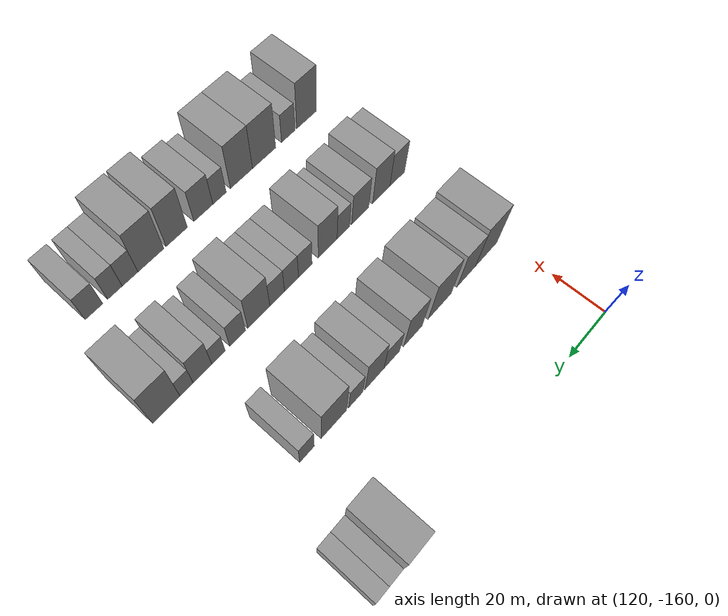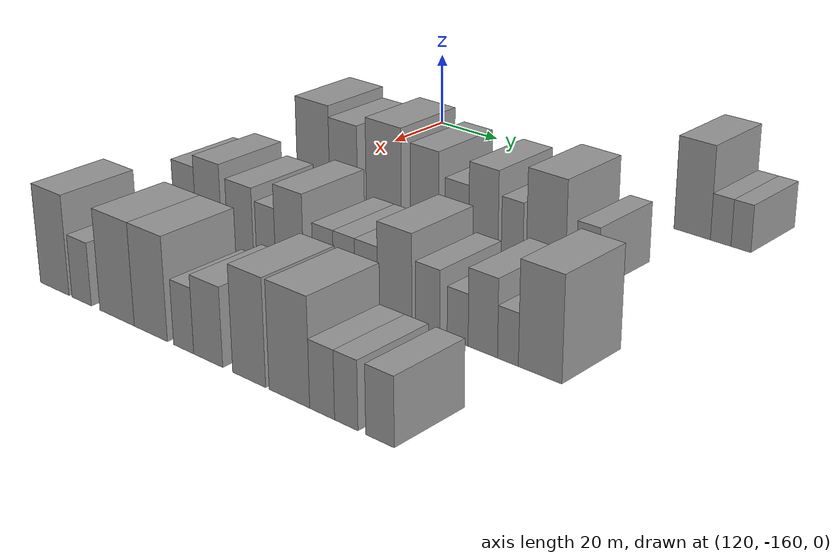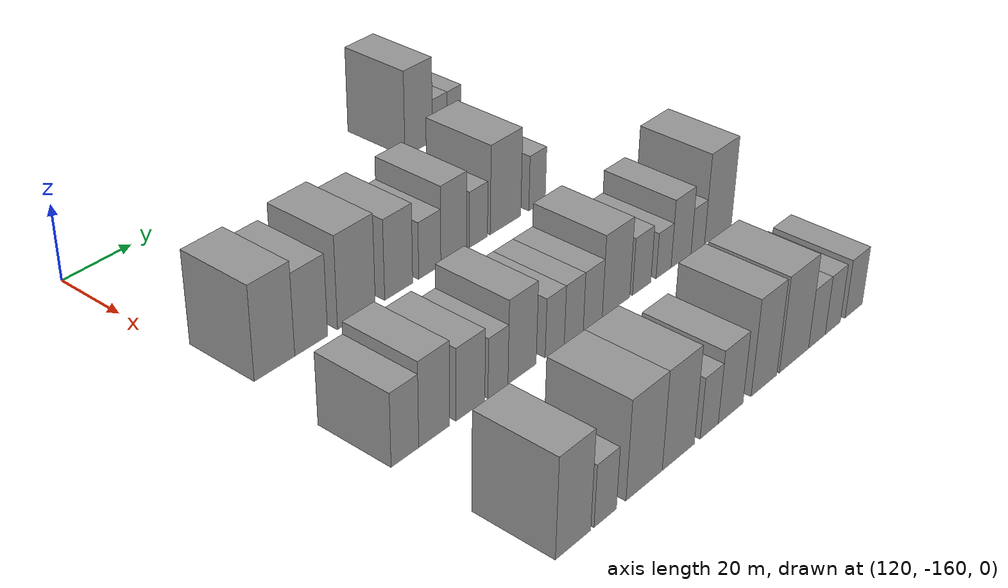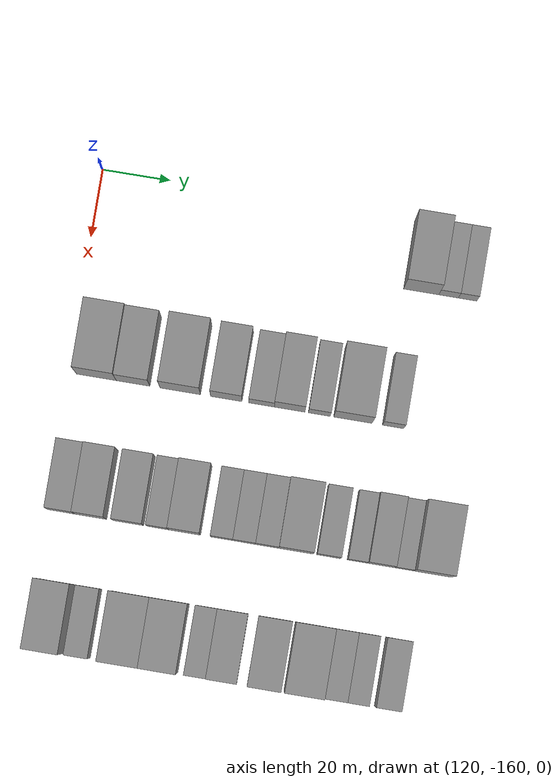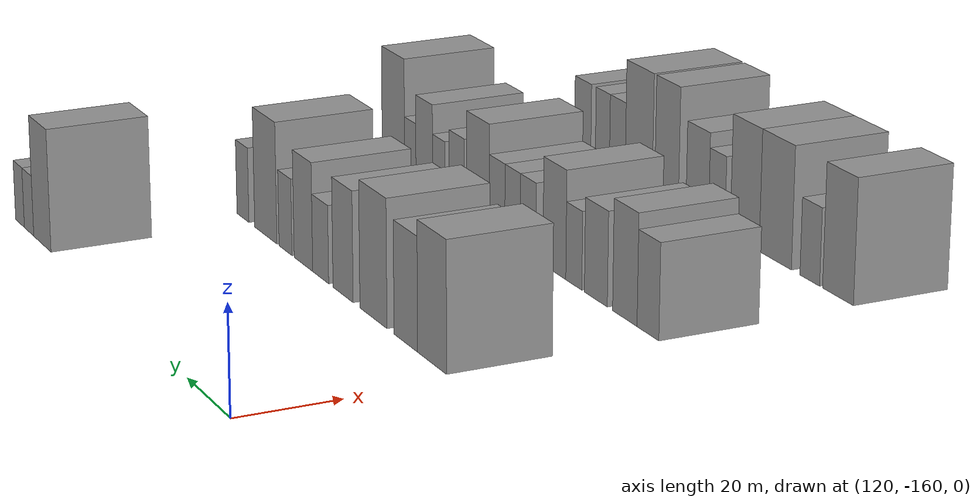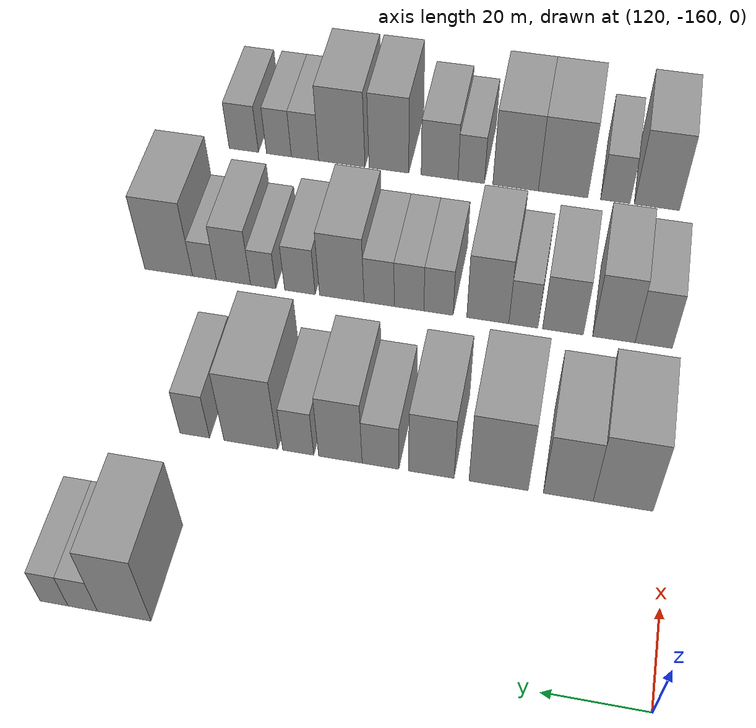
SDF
<sdf version="1.6">
 <world name="default">
  <model name="building_345">
   <static>1</static>
   <pose>130.0000 -62.9332 0 0.000000 0.000000 0.000000</pose>
   <link name="link">
    <pose>0 0 12.00 0 0 0</pose>
    <collision name="collision"><geometry><box><size>20.0000 10.3238 24.0000</size></box></geometry></collision>
    <visual name="visual">
     <cast_shadows>0</cast_shadows>
     <geometry><box><size>20.0000 10.3238 24.0000</size></box></geometry>
     <material>
      <script>
       <uri>model://grey_wall/materials/scripts</uri>
       <uri>model://grey_wall/materials/textures</uri>
       <name>vrc/grey_wall</name>
      </script>
     </material>
    </visual>
   </link>
  </model>
  <model name="building_346">
   <static>1</static>
   <pose>130.0000 -54.9087 0 0.000000 0.000000 0.000000</pose>
   <link name="link">
    <pose>0 0 6.00 0 0 0</pose>
    <collision name="collision"><geometry><box><size>20.0000 5.7251 12.0000</size></box></geometry></collision>
    <visual name="visual">
     <cast_shadows>0</cast_shadows>
     <geometry><box><size>20.0000 5.7251 12.0000</size></box></geometry>
     <material>
      <script>
       <uri>model://grey_wall/materials/scripts</uri>
       <uri>model://grey_wall/materials/textures</uri>
       <name>vrc/grey_wall</name>
      </script>
     </material>
    </visual>
   </link>
  </model>
  <model name="building_347">
   <static>1</static>
   <pose>130.0000 -49.3336 0 0.000000 0.000000 0.000000</pose>
   <link name="link">
    <pose>0 0 6.00 0 0 0</pose>
    <collision name="collision"><geometry><box><size>20.0000 5.4250 12.0000</size></box></geometry></collision>
    <visual name="visual">
     <cast_shadows>0</cast_shadows>
     <geometry><box><size>20.0000 5.4250 12.0000</size></box></geometry>
     <material>
      <script>
       <uri>model://grey_wall/materials/scripts</uri>
       <uri>model://grey_wall/materials/textures</uri>
       <name>vrc/grey_wall</name>
      </script>
     </material>
    </visual>
   </link>
  </model>
  <model name="building_473">
   <static>1</static>
   <pose>170.0000 -151.4322 0 0.000000 0.000000 0.000000</pose>
   <link name="link">
    <pose>0 0 12.00 0 0 0</pose>
    <collision name="collision"><geometry><box><size>20.0000 11.6845 24.0000</size></box></geometry></collision>
    <visual name="visual">
     <cast_shadows>0</cast_shadows>
     <geometry><box><size>20.0000 11.6845 24.0000</size></box></geometry>
     <material>
      <script>
       <uri>model://grey_wall/materials/scripts</uri>
       <uri>model://grey_wall/materials/textures</uri>
       <name>vrc/grey_wall</name>
      </script>
     </material>
    </visual>
   </link>
  </model>
  <model name="building_474">
   <static>1</static>
   <pose>170.0000 -140.6809 0 0.000000 0.000000 0.000000</pose>
   <link name="link">
    <pose>0 0 10.50 0 0 0</pose>
    <collision name="collision"><geometry><box><size>20.0000 9.8181 21.0000</size></box></geometry></collision>
    <visual name="visual">
     <cast_shadows>0</cast_shadows>
     <geometry><box><size>20.0000 9.8181 21.0000</size></box></geometry>
     <material>
      <script>
       <uri>model://grey_wall/materials/scripts</uri>
       <uri>model://grey_wall/materials/textures</uri>
       <name>vrc/grey_wall</name>
      </script>
     </material>
    </visual>
   </link>
  </model>
  <model name="building_475">
   <static>1</static>
   <pose>170.0000 -126.8696 0 0.000000 0.000000 0.000000</pose>
   <link name="link">
    <pose>0 0 12.00 0 0 0</pose>
    <collision name="collision"><geometry><box><size>20.0000 11.8046 24.0000</size></box></geometry></collision>
    <visual name="visual">
     <cast_shadows>0</cast_shadows>
     <geometry><box><size>20.0000 11.8046 24.0000</size></box></geometry>
     <material>
      <script>
       <uri>model://grey_wall/materials/scripts</uri>
       <uri>model://grey_wall/materials/textures</uri>
       <name>vrc/grey_wall</name>
      </script>
     </material>
    </visual>
   </link>
  </model>
  <model name="building_476">
   <static>1</static>
   <pose>170.0000 -113.3914 0 0.000000 0.000000 0.000000</pose>
   <link name="link">
    <pose>0 0 10.50 0 0 0</pose>
    <collision name="collision"><geometry><box><size>20.0000 9.1517 21.0000</size></box></geometry></collision>
    <visual name="visual">
     <cast_shadows>0</cast_shadows>
     <geometry><box><size>20.0000 9.1517 21.0000</size></box></geometry>
     <material>
      <script>
       <uri>model://grey_wall/materials/scripts</uri>
       <uri>model://grey_wall/materials/textures</uri>
       <name>vrc/grey_wall</name>
      </script>
     </material>
    </visual>
   </link>
  </model>
  <model name="building_477">
   <static>1</static>
   <pose>170.0000 -103.0781 0 0.000000 0.000000 0.000000</pose>
   <link name="link">
    <pose>0 0 7.50 0 0 0</pose>
    <collision name="collision"><geometry><box><size>20.0000 7.4750 15.0000</size></box></geometry></collision>
    <visual name="visual">
     <cast_shadows>0</cast_shadows>
     <geometry><box><size>20.0000 7.4750 15.0000</size></box></geometry>
     <material>
      <script>
       <uri>model://grey_wall/materials/scripts</uri>
       <uri>model://grey_wall/materials/textures</uri>
       <name>vrc/grey_wall</name>
      </script>
     </material>
    </visual>
   </link>
  </model>
  <model name="building_478">
   <static>1</static>
   <pose>170.0000 -94.8814 0 0.000000 0.000000 0.000000</pose>
   <link name="link">
    <pose>0 0 10.50 0 0 0</pose>
    <collision name="collision"><geometry><box><size>20.0000 8.9184 21.0000</size></box></geometry></collision>
    <visual name="visual">
     <cast_shadows>0</cast_shadows>
     <geometry><box><size>20.0000 8.9184 21.0000</size></box></geometry>
     <material>
      <script>
       <uri>model://grey_wall/materials/scripts</uri>
       <uri>model://grey_wall/materials/textures</uri>
       <name>vrc/grey_wall</name>
      </script>
     </material>
    </visual>
   </link>
  </model>
  <model name="building_479">
   <static>1</static>
   <pose>170.0000 -86.2132 0 0.000000 0.000000 0.000000</pose>
   <link name="link">
    <pose>0 0 7.50 0 0 0</pose>
    <collision name="collision"><geometry><box><size>20.0000 6.4179 15.0000</size></box></geometry></collision>
    <visual name="visual">
     <cast_shadows>0</cast_shadows>
     <geometry><box><size>20.0000 6.4179 15.0000</size></box></geometry>
     <material>
      <script>
       <uri>model://grey_wall/materials/scripts</uri>
       <uri>model://grey_wall/materials/textures</uri>
       <name>vrc/grey_wall</name>
      </script>
     </material>
    </visual>
   </link>
  </model>
  <model name="building_480">
   <static>1</static>
   <pose>170.0000 -76.3751 0 0.000000 0.000000 0.000000</pose>
   <link name="link">
    <pose>0 0 12.00 0 0 0</pose>
    <collision name="collision"><geometry><box><size>20.0000 11.2582 24.0000</size></box></geometry></collision>
    <visual name="visual">
     <cast_shadows>0</cast_shadows>
     <geometry><box><size>20.0000 11.2582 24.0000</size></box></geometry>
     <material>
      <script>
       <uri>model://grey_wall/materials/scripts</uri>
       <uri>model://grey_wall/materials/textures</uri>
       <name>vrc/grey_wall</name>
      </script>
     </material>
    </visual>
   </link>
  </model>
  <model name="building_481">
   <static>1</static>
   <pose>170.0000 -64.6272 0 0.000000 0.000000 0.000000</pose>
   <link name="link">
    <pose>0 0 7.50 0 0 0</pose>
    <collision name="collision"><geometry><box><size>20.0000 6.2377 15.0000</size></box></geometry></collision>
    <visual name="visual">
     <cast_shadows>0</cast_shadows>
     <geometry><box><size>20.0000 6.2377 15.0000</size></box></geometry>
     <material>
      <script>
       <uri>model://grey_wall/materials/scripts</uri>
       <uri>model://grey_wall/materials/textures</uri>
       <name>vrc/grey_wall</name>
      </script>
     </material>
    </visual>
   </link>
  </model>
  <model name="building_603">
   <static>1</static>
   <pose>210.0000 -154.6650 0 0.000000 0.000000 0.000000</pose>
   <link name="link">
    <pose>0 0 9.00 0 0 0</pose>
    <collision name="collision"><geometry><box><size>20.0000 7.9329 18.0000</size></box></geometry></collision>
    <visual name="visual">
     <cast_shadows>0</cast_shadows>
     <geometry><box><size>20.0000 7.9329 18.0000</size></box></geometry>
     <material>
      <script>
       <uri>model://grey_wall/materials/scripts</uri>
       <uri>model://grey_wall/materials/textures</uri>
       <name>vrc/grey_wall</name>
      </script>
     </material>
    </visual>
   </link>
  </model>
  <model name="building_604">
   <static>1</static>
   <pose>210.0000 -146.1417 0 0.000000 0.000000 0.000000</pose>
   <link name="link">
    <pose>0 0 10.50 0 0 0</pose>
    <collision name="collision"><geometry><box><size>20.0000 9.1138 21.0000</size></box></geometry></collision>
    <visual name="visual">
     <cast_shadows>0</cast_shadows>
     <geometry><box><size>20.0000 9.1138 21.0000</size></box></geometry>
     <material>
      <script>
       <uri>model://grey_wall/materials/scripts</uri>
       <uri>model://grey_wall/materials/textures</uri>
       <name>vrc/grey_wall</name>
      </script>
     </material>
    </visual>
   </link>
  </model>
  <model name="building_605">
   <static>1</static>
   <pose>210.0000 -135.1656 0 0.000000 0.000000 0.000000</pose>
   <link name="link">
    <pose>0 0 9.00 0 0 0</pose>
    <collision name="collision"><geometry><box><size>20.0000 8.8383 18.0000</size></box></geometry></collision>
    <visual name="visual">
     <cast_shadows>0</cast_shadows>
     <geometry><box><size>20.0000 8.8383 18.0000</size></box></geometry>
     <material>
      <script>
       <uri>model://grey_wall/materials/scripts</uri>
       <uri>model://grey_wall/materials/textures</uri>
       <name>vrc/grey_wall</name>
      </script>
     </material>
    </visual>
   </link>
  </model>
  <model name="building_606">
   <static>1</static>
   <pose>210.0000 -126.5722 0 0.000000 0.000000 0.000000</pose>
   <link name="link">
    <pose>0 0 7.50 0 0 0</pose>
    <collision name="collision"><geometry><box><size>20.0000 6.3486 15.0000</size></box></geometry></collision>
    <visual name="visual">
     <cast_shadows>0</cast_shadows>
     <geometry><box><size>20.0000 6.3486 15.0000</size></box></geometry>
     <material>
      <script>
       <uri>model://grey_wall/materials/scripts</uri>
       <uri>model://grey_wall/materials/textures</uri>
       <name>vrc/grey_wall</name>
      </script>
     </material>
    </visual>
   </link>
  </model>
  <model name="building_607">
   <static>1</static>
   <pose>210.0000 -118.7902 0 0.000000 0.000000 0.000000</pose>
   <link name="link">
    <pose>0 0 10.50 0 0 0</pose>
    <collision name="collision"><geometry><box><size>20.0000 9.2154 21.0000</size></box></geometry></collision>
    <visual name="visual">
     <cast_shadows>0</cast_shadows>
     <geometry><box><size>20.0000 9.2154 21.0000</size></box></geometry>
     <material>
      <script>
       <uri>model://grey_wall/materials/scripts</uri>
       <uri>model://grey_wall/materials/textures</uri>
       <name>vrc/grey_wall</name>
      </script>
     </material>
    </visual>
   </link>
  </model>
  <model name="building_608">
   <static>1</static>
   <pose>210.0000 -107.9401 0 0.000000 0.000000 0.000000</pose>
   <link name="link">
    <pose>0 0 7.50 0 0 0</pose>
    <collision name="collision"><geometry><box><size>20.0000 6.4849 15.0000</size></box></geometry></collision>
    <visual name="visual">
     <cast_shadows>0</cast_shadows>
     <geometry><box><size>20.0000 6.4849 15.0000</size></box></geometry>
     <material>
      <script>
       <uri>model://grey_wall/materials/scripts</uri>
       <uri>model://grey_wall/materials/textures</uri>
       <name>vrc/grey_wall</name>
      </script>
     </material>
    </visual>
   </link>
  </model>
  <model name="building_609">
   <static>1</static>
   <pose>210.0000 -101.4058 0 0.000000 0.000000 0.000000</pose>
   <link name="link">
    <pose>0 0 7.50 0 0 0</pose>
    <collision name="collision"><geometry><box><size>20.0000 6.5837 15.0000</size></box></geometry></collision>
    <visual name="visual">
     <cast_shadows>0</cast_shadows>
     <geometry><box><size>20.0000 6.5837 15.0000</size></box></geometry>
     <material>
      <script>
       <uri>model://grey_wall/materials/scripts</uri>
       <uri>model://grey_wall/materials/textures</uri>
       <name>vrc/grey_wall</name>
      </script>
     </material>
    </visual>
   </link>
  </model>
  <model name="building_610">
   <static>1</static>
   <pose>210.0000 -94.7305 0 0.000000 0.000000 0.000000</pose>
   <link name="link">
    <pose>0 0 7.50 0 0 0</pose>
    <collision name="collision"><geometry><box><size>20.0000 6.7668 15.0000</size></box></geometry></collision>
    <visual name="visual">
     <cast_shadows>0</cast_shadows>
     <geometry><box><size>20.0000 6.7668 15.0000</size></box></geometry>
     <material>
      <script>
       <uri>model://grey_wall/materials/scripts</uri>
       <uri>model://grey_wall/materials/textures</uri>
       <name>vrc/grey_wall</name>
      </script>
     </material>
    </visual>
   </link>
  </model>
  <model name="building_611">
   <static>1</static>
   <pose>210.0000 -86.3413 0 0.000000 0.000000 0.000000</pose>
   <link name="link">
    <pose>0 0 10.50 0 0 0</pose>
    <collision name="collision"><geometry><box><size>20.0000 10.0115 21.0000</size></box></geometry></collision>
    <visual name="visual">
     <cast_shadows>0</cast_shadows>
     <geometry><box><size>20.0000 10.0115 21.0000</size></box></geometry>
     <material>
      <script>
       <uri>model://grey_wall/materials/scripts</uri>
       <uri>model://grey_wall/materials/textures</uri>
       <name>vrc/grey_wall</name>
      </script>
     </material>
    </visual>
   </link>
  </model>
  <model name="building_612">
   <static>1</static>
   <pose>210.0000 -76.8689 0 0.000000 0.000000 0.000000</pose>
   <link name="link">
    <pose>0 0 7.50 0 0 0</pose>
    <collision name="collision"><geometry><box><size>20.0000 6.9334 15.0000</size></box></geometry></collision>
    <visual name="visual">
     <cast_shadows>0</cast_shadows>
     <geometry><box><size>20.0000 6.9334 15.0000</size></box></geometry>
     <material>
      <script>
       <uri>model://grey_wall/materials/scripts</uri>
       <uri>model://grey_wall/materials/textures</uri>
       <name>vrc/grey_wall</name>
      </script>
     </material>
    </visual>
   </link>
  </model>
  <model name="building_613">
   <static>1</static>
   <pose>210.0000 -68.5113 0 0.000000 0.000000 0.000000</pose>
   <link name="link">
    <pose>0 0 6.00 0 0 0</pose>
    <collision name="collision"><geometry><box><size>20.0000 5.7816 12.0000</size></box></geometry></collision>
    <visual name="visual">
     <cast_shadows>0</cast_shadows>
     <geometry><box><size>20.0000 5.7816 12.0000</size></box></geometry>
     <material>
      <script>
       <uri>model://grey_wall/materials/scripts</uri>
       <uri>model://grey_wall/materials/textures</uri>
       <name>vrc/grey_wall</name>
      </script>
     </material>
    </visual>
   </link>
  </model>
  <model name="building_614">
   <static>1</static>
   <pose>210.0000 -61.6804 0 0.000000 0.000000 0.000000</pose>
   <link name="link">
    <pose>0 0 9.00 0 0 0</pose>
    <collision name="collision"><geometry><box><size>20.0000 7.8803 18.0000</size></box></geometry></collision>
    <visual name="visual">
     <cast_shadows>0</cast_shadows>
     <geometry><box><size>20.0000 7.8803 18.0000</size></box></geometry>
     <material>
      <script>
       <uri>model://grey_wall/materials/scripts</uri>
       <uri>model://grey_wall/materials/textures</uri>
       <name>vrc/grey_wall</name>
      </script>
     </material>
    </visual>
   </link>
  </model>
  <model name="building_615">
   <static>1</static>
   <pose>210.0000 -55.0049 0 0.000000 0.000000 0.000000</pose>
   <link name="link">
    <pose>0 0 6.00 0 0 0</pose>
    <collision name="collision"><geometry><box><size>20.0000 5.4707 12.0000</size></box></geometry></collision>
    <visual name="visual">
     <cast_shadows>0</cast_shadows>
     <geometry><box><size>20.0000 5.4707 12.0000</size></box></geometry>
     <material>
      <script>
       <uri>model://grey_wall/materials/scripts</uri>
       <uri>model://grey_wall/materials/textures</uri>
       <name>vrc/grey_wall</name>
      </script>
     </material>
    </visual>
   </link>
  </model>
  <model name="building_616">
   <static>1</static>
   <pose>210.0000 -46.7229 0 0.000000 0.000000 0.000000</pose>
   <link name="link">
    <pose>0 0 12.00 0 0 0</pose>
    <collision name="collision"><geometry><box><size>20.0000 11.0932 24.0000</size></box></geometry></collision>
    <visual name="visual">
     <cast_shadows>0</cast_shadows>
     <geometry><box><size>20.0000 11.0932 24.0000</size></box></geometry>
     <material>
      <script>
       <uri>model://grey_wall/materials/scripts</uri>
       <uri>model://grey_wall/materials/textures</uri>
       <name>vrc/grey_wall</name>
      </script>
     </material>
    </visual>
   </link>
  </model>
  <model name="building_733">
   <static>1</static>
   <pose>250.0000 -152.6688 0 0.000000 0.000000 0.000000</pose>
   <link name="link">
    <pose>0 0 12.00 0 0 0</pose>
    <collision name="collision"><geometry><box><size>20.0000 10.4721 24.0000</size></box></geometry></collision>
    <visual name="visual">
     <cast_shadows>0</cast_shadows>
     <geometry><box><size>20.0000 10.4721 24.0000</size></box></geometry>
     <material>
      <script>
       <uri>model://grey_wall/materials/scripts</uri>
       <uri>model://grey_wall/materials/textures</uri>
       <name>vrc/grey_wall</name>
      </script>
     </material>
    </visual>
   </link>
  </model>
  <model name="building_734">
   <static>1</static>
   <pose>250.0000 -142.9962 0 0.000000 0.000000 0.000000</pose>
   <link name="link">
    <pose>0 0 7.50 0 0 0</pose>
    <collision name="collision"><geometry><box><size>20.0000 6.8733 15.0000</size></box></geometry></collision>
    <visual name="visual">
     <cast_shadows>0</cast_shadows>
     <geometry><box><size>20.0000 6.8733 15.0000</size></box></geometry>
     <material>
      <script>
       <uri>model://grey_wall/materials/scripts</uri>
       <uri>model://grey_wall/materials/textures</uri>
       <name>vrc/grey_wall</name>
      </script>
     </material>
    </visual>
   </link>
  </model>
  <model name="building_735">
   <static>1</static>
   <pose>250.0000 -130.7201 0 0.000000 0.000000 0.000000</pose>
   <link name="link">
    <pose>0 0 12.00 0 0 0</pose>
    <collision name="collision"><geometry><box><size>20.0000 11.6788 24.0000</size></box></geometry></collision>
    <visual name="visual">
     <cast_shadows>0</cast_shadows>
     <geometry><box><size>20.0000 11.6788 24.0000</size></box></geometry>
     <material>
      <script>
       <uri>model://grey_wall/materials/scripts</uri>
       <uri>model://grey_wall/materials/textures</uri>
       <name>vrc/grey_wall</name>
      </script>
     </material>
    </visual>
   </link>
  </model>
  <model name="building_736">
   <static>1</static>
   <pose>250.0000 -119.4681 0 0.000000 0.000000 0.000000</pose>
   <link name="link">
    <pose>0 0 12.00 0 0 0</pose>
    <collision name="collision"><geometry><box><size>20.0000 10.8252 24.0000</size></box></geometry></collision>
    <visual name="visual">
     <cast_shadows>0</cast_shadows>
     <geometry><box><size>20.0000 10.8252 24.0000</size></box></geometry>
     <material>
      <script>
       <uri>model://grey_wall/materials/scripts</uri>
       <uri>model://grey_wall/materials/textures</uri>
       <name>vrc/grey_wall</name>
      </script>
     </material>
    </visual>
   </link>
  </model>
  <model name="building_737">
   <static>1</static>
   <pose>250.0000 -108.8877 0 0.000000 0.000000 0.000000</pose>
   <link name="link">
    <pose>0 0 7.50 0 0 0</pose>
    <collision name="collision"><geometry><box><size>20.0000 6.3354 15.0000</size></box></geometry></collision>
    <visual name="visual">
     <cast_shadows>0</cast_shadows>
     <geometry><box><size>20.0000 6.3354 15.0000</size></box></geometry>
     <material>
      <script>
       <uri>model://grey_wall/materials/scripts</uri>
       <uri>model://grey_wall/materials/textures</uri>
       <name>vrc/grey_wall</name>
      </script>
     </material>
    </visual>
   </link>
  </model>
  <model name="building_738">
   <static>1</static>
   <pose>250.0000 -101.2846 0 0.000000 0.000000 0.000000</pose>
   <link name="link">
    <pose>0 0 9.00 0 0 0</pose>
    <collision name="collision"><geometry><box><size>20.0000 8.8707 18.0000</size></box></geometry></collision>
    <visual name="visual">
     <cast_shadows>0</cast_shadows>
     <geometry><box><size>20.0000 8.8707 18.0000</size></box></geometry>
     <material>
      <script>
       <uri>model://grey_wall/materials/scripts</uri>
       <uri>model://grey_wall/materials/textures</uri>
       <name>vrc/grey_wall</name>
      </script>
     </material>
    </visual>
   </link>
  </model>
  <model name="building_739">
   <static>1</static>
   <pose>250.0000 -89.0202 0 0.000000 0.000000 0.000000</pose>
   <link name="link">
    <pose>0 0 12.00 0 0 0</pose>
    <collision name="collision"><geometry><box><size>20.0000 9.6581 24.0000</size></box></geometry></collision>
    <visual name="visual">
     <cast_shadows>0</cast_shadows>
     <geometry><box><size>20.0000 9.6581 24.0000</size></box></geometry>
     <material>
      <script>
       <uri>model://grey_wall/materials/scripts</uri>
       <uri>model://grey_wall/materials/textures</uri>
       <name>vrc/grey_wall</name>
      </script>
     </material>
    </visual>
   </link>
  </model>
  <model name="building_740">
   <static>1</static>
   <pose>250.0000 -77.5066 0 0.000000 0.000000 0.000000</pose>
   <link name="link">
    <pose>0 0 12.00 0 0 0</pose>
    <collision name="collision"><geometry><box><size>20.0000 11.3689 24.0000</size></box></geometry></collision>
    <visual name="visual">
     <cast_shadows>0</cast_shadows>
     <geometry><box><size>20.0000 11.3689 24.0000</size></box></geometry>
     <material>
      <script>
       <uri>model://grey_wall/materials/scripts</uri>
       <uri>model://grey_wall/materials/textures</uri>
       <name>vrc/grey_wall</name>
      </script>
     </material>
    </visual>
   </link>
  </model>
  <model name="building_741">
   <static>1</static>
   <pose>250.0000 -68.4458 0 0.000000 0.000000 0.000000</pose>
   <link name="link">
    <pose>0 0 7.50 0 0 0</pose>
    <collision name="collision"><geometry><box><size>20.0000 6.7527 15.0000</size></box></geometry></collision>
    <visual name="visual">
     <cast_shadows>0</cast_shadows>
     <geometry><box><size>20.0000 6.7527 15.0000</size></box></geometry>
     <material>
      <script>
       <uri>model://grey_wall/materials/scripts</uri>
       <uri>model://grey_wall/materials/textures</uri>
       <name>vrc/grey_wall</name>
      </script>
     </material>
    </visual>
   </link>
  </model>
  <model name="building_742">
   <static>1</static>
   <pose>250.0000 -61.9823 0 0.000000 0.000000 0.000000</pose>
   <link name="link">
    <pose>0 0 7.50 0 0 0</pose>
    <collision name="collision"><geometry><box><size>20.0000 6.1743 15.0000</size></box></geometry></collision>
    <visual name="visual">
     <cast_shadows>0</cast_shadows>
     <geometry><box><size>20.0000 6.1743 15.0000</size></box></geometry>
     <material>
      <script>
       <uri>model://grey_wall/materials/scripts</uri>
       <uri>model://grey_wall/materials/textures</uri>
       <name>vrc/grey_wall</name>
      </script>
     </material>
    </visual>
   </link>
  </model>
  <model name="building_743">
   <static>1</static>
   <pose>250.0000 -53.2470 0 0.000000 0.000000 0.000000</pose>
   <link name="link">
    <pose>0 0 7.50 0 0 0</pose>
    <collision name="collision"><geometry><box><size>20.0000 7.2965 15.0000</size></box></geometry></collision>
    <visual name="visual">
     <cast_shadows>0</cast_shadows>
     <geometry><box><size>20.0000 7.2965 15.0000</size></box></geometry>
     <material>
      <script>
       <uri>model://grey_wall/materials/scripts</uri>
       <uri>model://grey_wall/materials/textures</uri>
       <name>vrc/grey_wall</name>
      </script>
     </material>
    </visual>
   </link>
  </model>
 </world>
</sdf>
